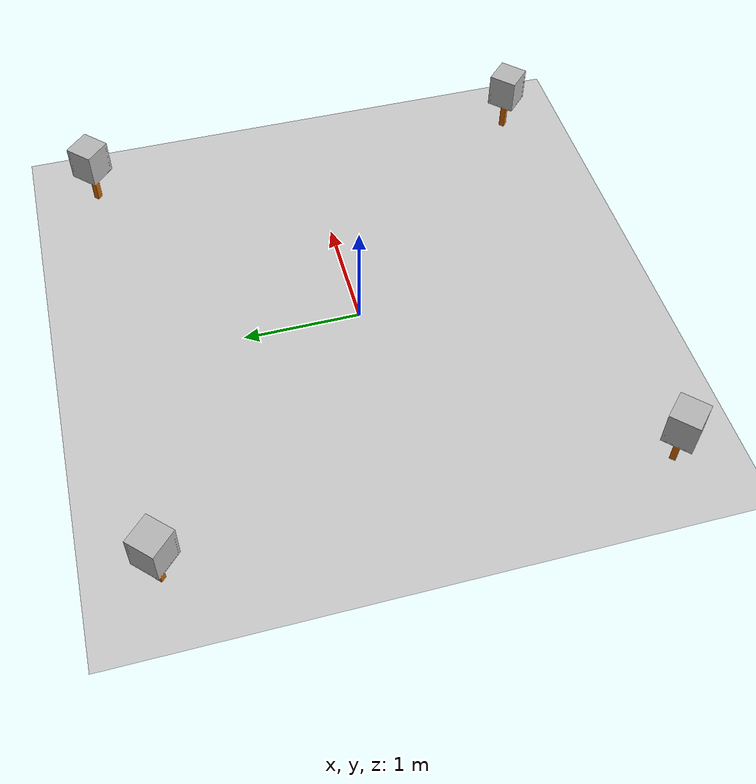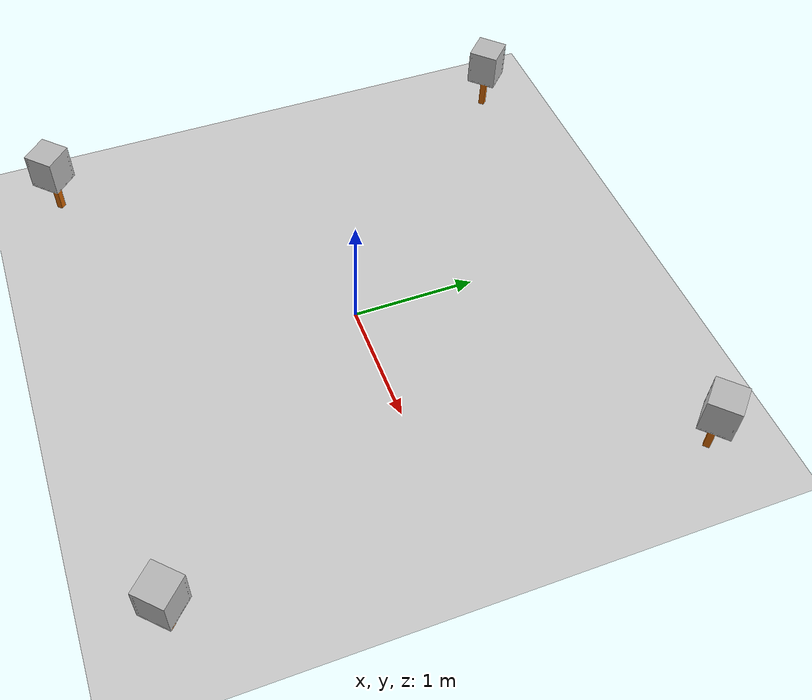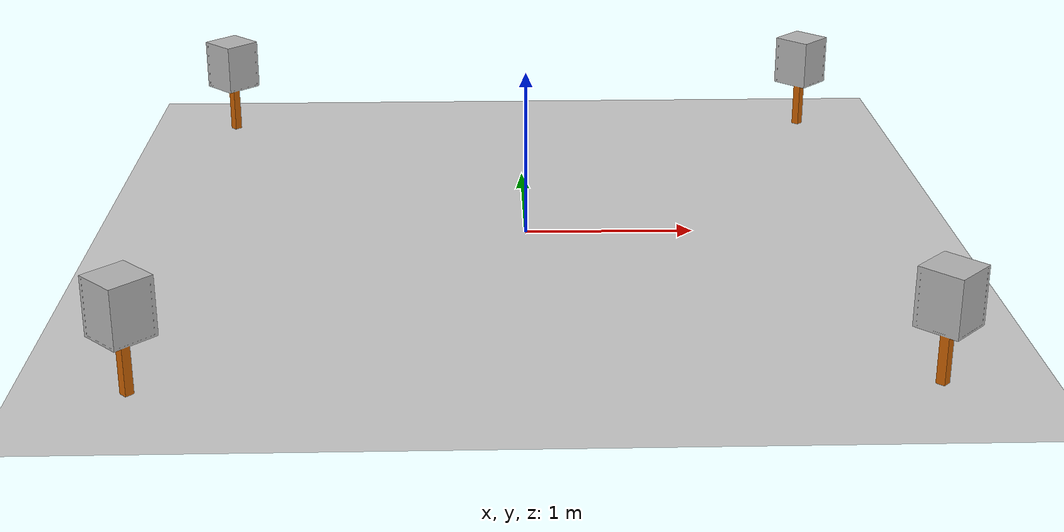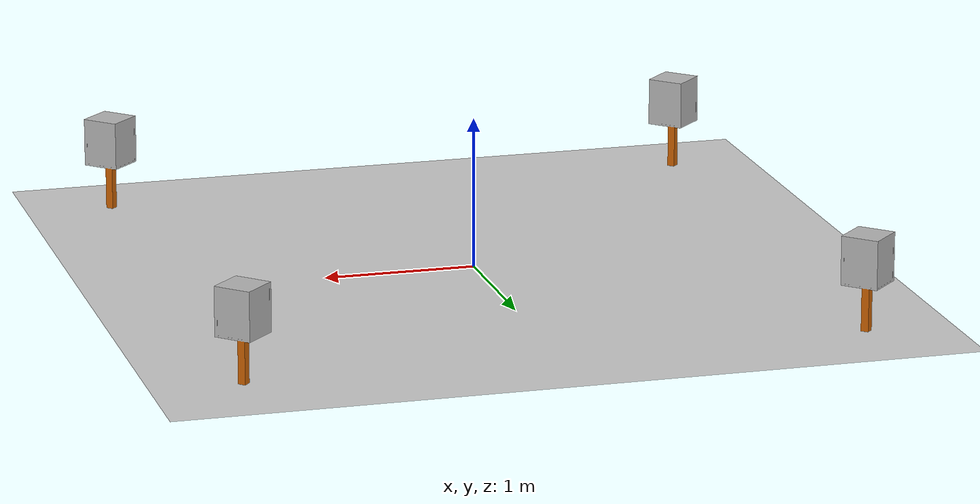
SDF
<?xml version="1.0"?>
<sdf version="1.6">
  <world name="aruco_world">

    <light name="sun" type="directional">
      <cast_shadows>true</cast_shadows>
      <pose>0 0 10 0 0 0</pose>
      <diffuse>1 1 1 1</diffuse>
      <specular>0.5 0.5 0.5 1</specular>
      <direction>0.1 0.1 -0.9</direction>
    </light>

    <light name="ambient_light" type="point">
      <pose>0 0 5 0 0 0</pose>
      <diffuse>1 1 1 1</diffuse>
      <specular>1 1 1 1</specular>
      <attenuation>
        <range>20</range>
        <constant>0.5</constant>
        <linear>0.01</linear>
        <quadratic>0.001</quadratic>
      </attenuation>
    </light>

    <include>
      <uri>model://ground_plane</uri>
    </include>

    <!-- Pole 51 - Front Left -->
    <include>
      <uri>model://pole51</uri>
      <name>pole51</name>
      <pose>2 2 0 0 0 -2.356</pose>
    </include>

    <!-- Pole 52 - Front Right -->
    <include>
      <uri>model://pole52</uri>
      <name>pole52</name>
      <pose>2 -2 0 0 0 2.356</pose>
    </include>

    <!-- Pole 53 - Rear Left -->
    <include>
      <uri>model://pole53</uri>
      <name>pole53</name>
      <pose>-2 2 0 0 0 -0.785</pose>
    </include>

    <!-- Pole 54 - Rear Right -->
    <include>
      <uri>model://pole54</uri>
      <name>pole54</name>
      <pose>-2 -2 0 0 0 0.785</pose>
    </include>

  </world>
</sdf>

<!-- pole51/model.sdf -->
<sdf version="1.6">
    <model name="pole51">
        <static>true</static>
        <pose>0 0 0 0 0 0</pose>
        <link name="link">
            <collision name="collision">
                <geometry>
                    <mesh>
                        <scale>1 1 1</scale>
                        <uri>model://pole51/meshes/pole51.stl</uri>
                    </mesh>
                </geometry>
                <surface>
                    <friction>
                        <ode>
                            <mu>1.2</mu>
                            <mu2>1.2</mu2>
                        </ode>
                    </friction>
                </surface>
            </collision>
            <visual name="visual">
                <geometry>
                    <mesh>
                        <scale>1 1 1</scale>
                        <uri>model://pole51/meshes/pole51.dae</uri>
                    </mesh>
                </geometry>
            </visual>
        </link>
    </model>
</sdf>

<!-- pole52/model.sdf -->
<sdf version="1.6">
    <model name="pole52">
        <static>true</static>
        <link name="link">
            <collision name="collision">
                <geometry>
                    <mesh>
                        <scale>1 1 1</scale>
                        <uri>model://pole52/meshes/pole52.stl</uri>
                    </mesh>
                    <surface>
                        <friction>
                            <ode>
                                <mu>1.2</mu>
                                <mu2>1.2</mu2>
                            </ode>
                        </friction>
                    </surface>
                </geometry>
            </collision>
            <visual name="visual">
                <geometry>
                    <mesh>
                        <scale>1 1 1</scale>
                        <uri>model://pole52/meshes/pole52.dae</uri>
                    </mesh>
                </geometry>
            </visual>
        </link>
    </model>
</sdf>

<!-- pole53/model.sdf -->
<sdf version="1.6">
    <model name="pole53">
        <static>true</static>
        <link name="link">
            <collision name="collision">
                <geometry>
                    <mesh>
                        <scale>1 1 1</scale>
                        <uri>model://pole53/meshes/pole53.stl</uri>
                    </mesh>
                    <surface>
                        <friction>
                            <ode>
                                <mu>1.2</mu>
                                <mu2>1.2</mu2>
                            </ode>
                        </friction>
                    </surface>
                </geometry>
            </collision>
            <visual name="visual">
                <geometry>
                    <mesh>
                        <scale>1 1 1</scale>
                        <uri>model://pole53/meshes/pole53.dae</uri>
                    </mesh>
                </geometry>
            </visual>
        </link>
    </model>
</sdf>

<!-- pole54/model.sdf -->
<sdf version="1.6">
    <model name="pole54">
        <static>true</static>
        <link name="link">
            <collision name="collision">
                <geometry>
                    <mesh>
                        <scale>1 1 1</scale>
                        <uri>model://pole54/meshes/pole54.stl</uri>
                    </mesh>
                    <surface>
                        <friction>
                            <ode>
                                <mu>1.2</mu>
                                <mu2>1.2</mu2>
                            </ode>
                        </friction>
                    </surface>
                </geometry>
            </collision>
            <visual name="visual">
                <geometry>
                    <mesh>
                        <scale>1 1 1</scale>
                        <uri>model://pole54/meshes/pole54.dae</uri>
                    </mesh>
                </geometry>
            </visual>
        </link>
    </model>
</sdf>
